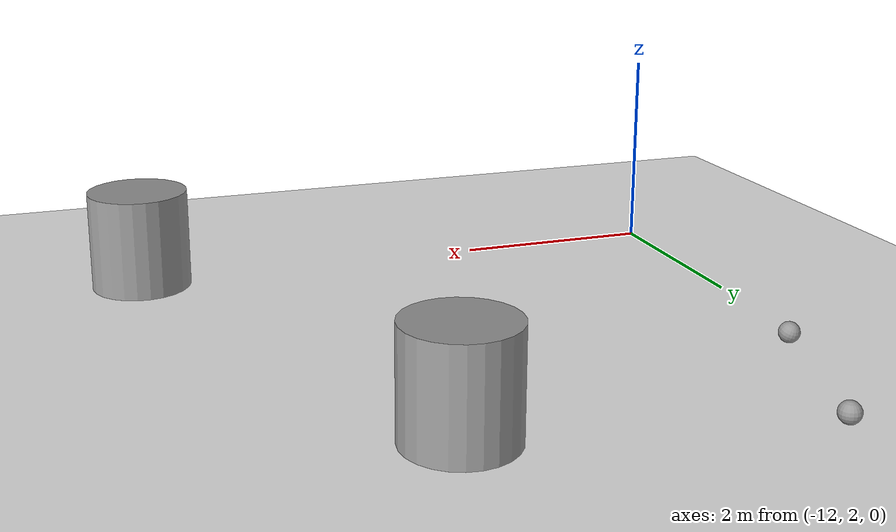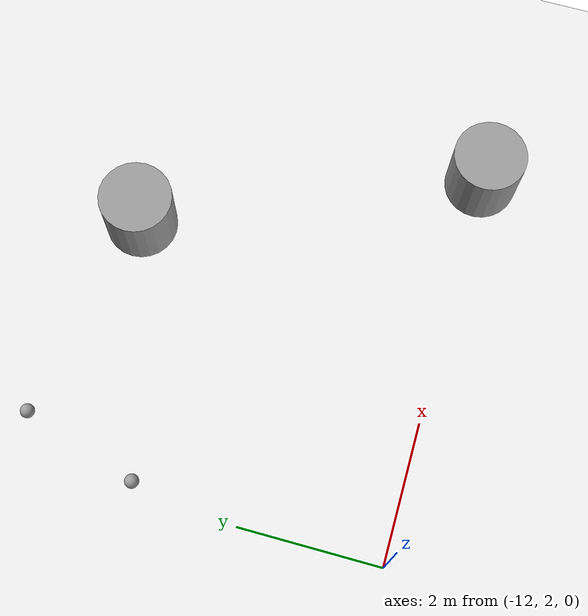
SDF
<sdf version="1.7">
 <world name="default">
  <model name="ground_plane">
   <static>1</static>
   <link name="link">
    <collision name="collision">
     <geometry><plane><normal>0 0 1</normal><size>100 100</size></plane></geometry>
     <surface><friction><ode><mu>100</mu><mu2>50</mu2></ode></friction></surface>
    </collision>
    <visual name="visual">
     <cast_shadows>0</cast_shadows>
     <geometry><plane><normal>0 0 1</normal><size>100 100</size></plane></geometry>
     <material>
      <script><uri>file://media/materials/scripts/gazebo.material</uri><name>Gazebo/White</name></script>
     </material>
    </visual>
   </link>
  </model>
  <model name="model2.1">
   <link name="link_0">
    <inertial>
     <mass>1</mass>
     <inertia><ixx>0.145833</ixx><ixy>0</ixy><ixz>0</ixz><iyy>0.145833</iyy><iyz>0</iyz><izz>0.125</izz></inertia>
    </inertial>
    <visual name="visual">
     <geometry><cylinder><radius>0.5</radius><length>1</length></cylinder></geometry>
     <material>
      <lighting>1</lighting>
      <script><uri>file://media/materials/scripts/gazebo.material</uri><name>Gazebo/Grey</name></script>
      <shader type="pixel"><normal_map>__default__</normal_map></shader>
     </material>
    </visual>
    <collision name="collision">
     <geometry><cylinder><radius>0.5</radius><length>1</length></cylinder></geometry>
     <surface>
      <friction>
       <ode><mu>1</mu><mu2>1</mu2><fdir1>0 0 0</fdir1><slip1>0</slip1><slip2>0</slip2></ode>
       <torsional>
        <coefficient>1</coefficient>
        <patch_radius>0</patch_radius>
        <surface_radius>0</surface_radius>
        <use_patch_radius>1</use_patch_radius>
        <ode><slip>0</slip></ode>
       </torsional>
      </friction>
      <bounce><restitution_coefficient>0</restitution_coefficient><threshold>1e+06</threshold></bounce>
      <contact>
       <collide_without_contact>0</collide_without_contact>
       <collide_without_contact_bitmask>1</collide_without_contact_bitmask>
       <collide_bitmask>1</collide_bitmask>
       <ode>
        <soft_cfm>0</soft_cfm>
        <soft_erp>0.2</soft_erp>
        <kp>1e+13</kp>
        <kd>1</kd>
        <max_vel>0</max_vel>
        <min_depth>0.001</min_depth>
       </ode>
       <bullet>
        <split_impulse>1</split_impulse>
        <split_impulse_penetration_threshold>-0.01</split_impulse_penetration_threshold>
        <soft_cfm>0</soft_cfm>
        <soft_erp>0.2</soft_erp>
        <kp>1e+13</kp>
        <kd>1</kd>
       </bullet>
      </contact>
     </surface>
    </collision>
   </link>
   <static>0</static>
   <pose>-6.38449 1.9957 0.499245 0.000173 0.000384 0.050783</pose>
  </model>
  <model name="model2.5">
   <link name="link_5">
    <inertial>
     <mass>1</mass>
     <inertia><ixx>0.145833</ixx><ixy>0</ixy><ixz>0</ixz><iyy>0.145833</iyy><iyz>0</iyz><izz>0.125</izz></inertia>
    </inertial>
    <pose>-0 4e-06 0 0 -0 0</pose>
    <visual name="visual">
     <geometry><cylinder><radius>0.5</radius><length>1</length></cylinder></geometry>
     <material>
      <lighting>1</lighting>
      <script><uri>file://media/materials/scripts/gazebo.material</uri><name>Gazebo/Grey</name></script>
      <shader type="pixel"/>
     </material>
    </visual>
    <collision name="collision">
     <geometry><cylinder><radius>0.5</radius><length>1</length></cylinder></geometry>
     <surface>
      <friction>
       <ode><mu>1</mu><mu2>1</mu2><fdir1>0 0 0</fdir1><slip1>0</slip1><slip2>0</slip2></ode>
       <torsional>
        <coefficient>1</coefficient>
        <patch_radius>0</patch_radius>
        <surface_radius>0</surface_radius>
        <use_patch_radius>1</use_patch_radius>
        <ode><slip>0</slip></ode>
       </torsional>
      </friction>
      <bounce><restitution_coefficient>0</restitution_coefficient><threshold>1e+06</threshold></bounce>
      <contact>
       <collide_without_contact>0</collide_without_contact>
       <collide_without_contact_bitmask>1</collide_without_contact_bitmask>
       <collide_bitmask>1</collide_bitmask>
       <ode>
        <soft_cfm>0</soft_cfm>
        <soft_erp>0.2</soft_erp>
        <kp>1e+13</kp>
        <kd>1</kd>
        <max_vel>0</max_vel>
        <min_depth>0.001</min_depth>
       </ode>
       <bullet>
        <split_impulse>1</split_impulse>
        <split_impulse_penetration_threshold>-0.01</split_impulse_penetration_threshold>
        <soft_cfm>0</soft_cfm>
        <soft_erp>0.2</soft_erp>
        <kp>1e+13</kp>
        <kd>1</kd>
       </bullet>
      </contact>
     </surface>
    </collision>
   </link>
   <static>0</static>
   <pose>-8.23961 6.46008 0.499 0 -0 0</pose>
  </model>
  <model name="sphere_0">
   <link name="link_0">
    <inertial>
     <mass>1</mass>
     <inertia><ixx>0.1</ixx><ixy>0</ixy><ixz>0</ixz><iyy>0.1</iyy><iyz>0</iyz><izz>0.1</izz></inertia>
    </inertial>
    <visual name="visual">
     <geometry><sphere><radius>0.1</radius></sphere></geometry>
     <material>
      <lighting>1</lighting>
      <script><uri>file://media/materials/scripts/gazebo.material</uri><name>Gazebo/Grey</name></script>
      <shader type="pixel"><normal_map>__default__</normal_map></shader>
      <ambient>0.3 0.3 0.3 1</ambient>
      <diffuse>0.7 0.7 0.7 1</diffuse>
      <specular>0.01 0.01 0.01 1</specular>
      <emissive>0 0 0 1</emissive>
     </material>
    </visual>
    <collision name="collision">
     <geometry><sphere><radius>0.1</radius></sphere></geometry>
     <surface>
      <friction>
       <ode><mu>1</mu><mu2>1</mu2><fdir1>0 0 0</fdir1><slip1>0</slip1><slip2>0</slip2></ode>
       <torsional>
        <coefficient>1</coefficient>
        <patch_radius>0</patch_radius>
        <surface_radius>0</surface_radius>
        <use_patch_radius>1</use_patch_radius>
        <ode><slip>0</slip></ode>
       </torsional>
      </friction>
      <bounce><restitution_coefficient>0</restitution_coefficient><threshold>1e+06</threshold></bounce>
      <contact>
       <collide_without_contact>0</collide_without_contact>
       <collide_without_contact_bitmask>1</collide_without_contact_bitmask>
       <collide_bitmask>1</collide_bitmask>
       <ode>
        <soft_cfm>0</soft_cfm>
        <soft_erp>0.2</soft_erp>
        <kp>1e+13</kp>
        <kd>1</kd>
        <max_vel>0.01</max_vel>
        <min_depth>0</min_depth>
       </ode>
       <bullet>
        <split_impulse>1</split_impulse>
        <split_impulse_penetration_threshold>-0.01</split_impulse_penetration_threshold>
        <soft_cfm>0</soft_cfm>
        <soft_erp>0.2</soft_erp>
        <kp>1e+13</kp>
        <kd>1</kd>
       </bullet>
      </contact>
     </surface>
    </collision>
   </link>
   <static>0</static>
   <pose>-11.7981 5.50129 0.1 -0.35685 -0.138799 0.018482</pose>
  </model>
  <model name="sphere_1">
   <link name="link_0">
    <inertial>
     <mass>1</mass>
     <inertia><ixx>0.1</ixx><ixy>0</ixy><ixz>0</ixz><iyy>0.1</iyy><iyz>0</iyz><izz>0.1</izz></inertia>
    </inertial>
    <visual name="visual">
     <geometry><sphere><radius>0.1</radius></sphere></geometry>
     <material>
      <lighting>1</lighting>
      <script><uri>file://media/materials/scripts/gazebo.material</uri><name>Gazebo/Grey</name></script>
      <shader type="pixel"><normal_map>__default__</normal_map></shader>
      <ambient>0.3 0.3 0.3 1</ambient>
      <diffuse>0.7 0.7 0.7 1</diffuse>
      <specular>0.01 0.01 0.01 1</specular>
      <emissive>0 0 0 1</emissive>
     </material>
    </visual>
    <collision name="collision">
     <geometry><sphere><radius>0.1</radius></sphere></geometry>
     <surface>
      <friction>
       <ode><mu>1</mu><mu2>1</mu2><fdir1>0 0 0</fdir1><slip1>0</slip1><slip2>0</slip2></ode>
       <torsional>
        <coefficient>1</coefficient>
        <patch_radius>0</patch_radius>
        <surface_radius>0</surface_radius>
        <use_patch_radius>1</use_patch_radius>
        <ode><slip>0</slip></ode>
       </torsional>
      </friction>
      <bounce><restitution_coefficient>0</restitution_coefficient><threshold>1e+06</threshold></bounce>
      <contact>
       <collide_without_contact>0</collide_without_contact>
       <collide_without_contact_bitmask>1</collide_without_contact_bitmask>
       <collide_bitmask>1</collide_bitmask>
       <ode>
        <soft_cfm>0</soft_cfm>
        <soft_erp>0.2</soft_erp>
        <kp>1e+13</kp>
        <kd>1</kd>
        <max_vel>0.01</max_vel>
        <min_depth>0</min_depth>
       </ode>
       <bullet>
        <split_impulse>1</split_impulse>
        <split_impulse_penetration_threshold>-0.01</split_impulse_penetration_threshold>
        <soft_cfm>0</soft_cfm>
        <soft_erp>0.2</soft_erp>
        <kp>1e+13</kp>
        <kd>1</kd>
       </bullet>
      </contact>
     </surface>
    </collision>
   </link>
   <static>0</static>
   <pose>-11.2616 7.14077 0.1 0 -0 0</pose>
  </model>
 </world>
</sdf>
